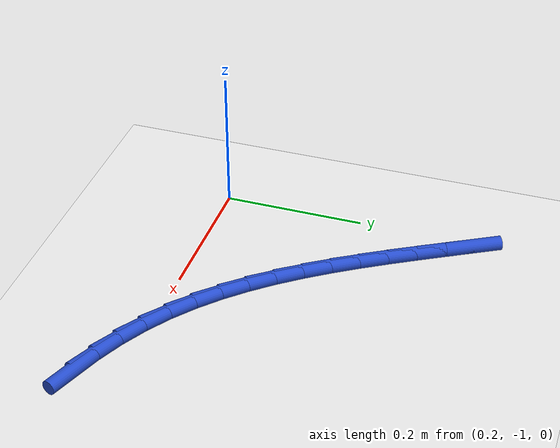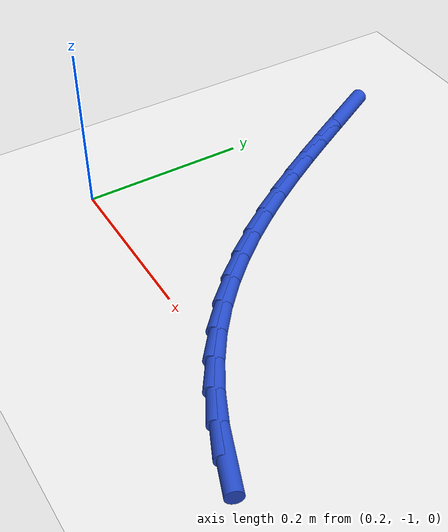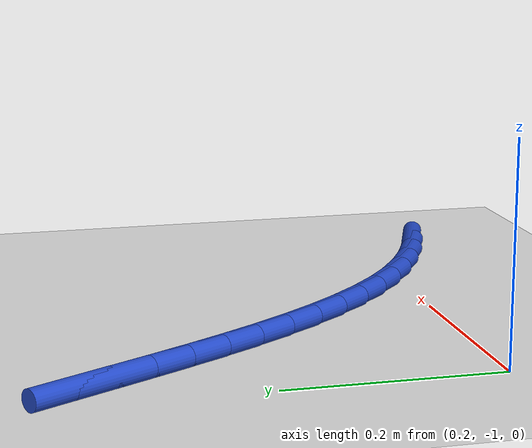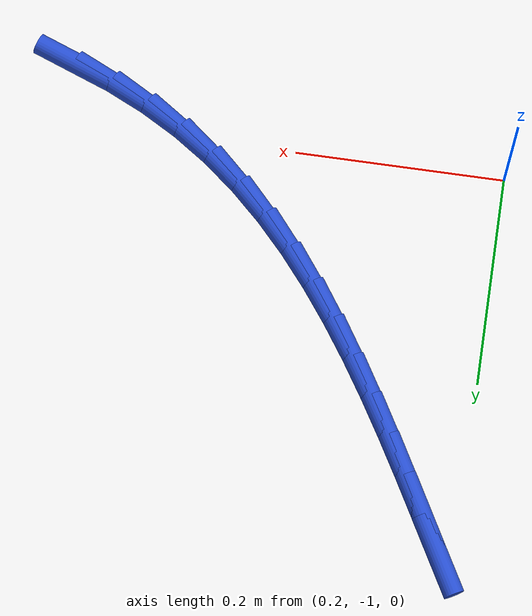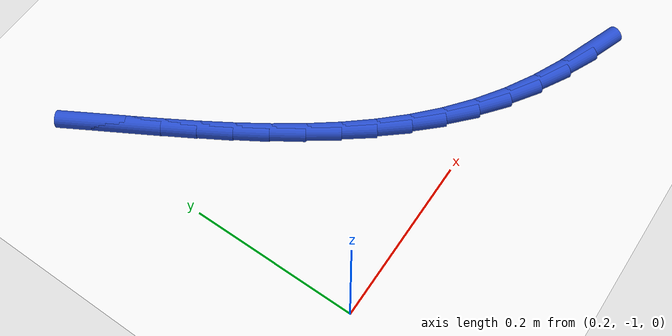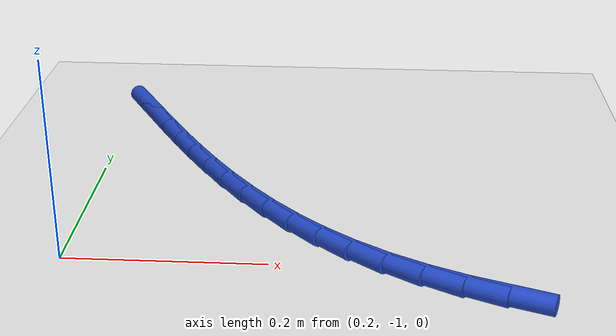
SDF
<sdf version="1.6">
 <world name="default">
  <model name="ground_plane">
   <static>1</static>
   <link name="link">
    <collision name="collision">
     <geometry><plane><normal>0 0 1</normal><size>100 100</size></plane></geometry>
     <surface><friction><ode><mu>100</mu><mu2>50</mu2></ode></friction></surface>
    </collision>
    <visual name="visual">
     <cast_shadows>0</cast_shadows>
     <geometry><plane><normal>0 0 1</normal><size>100 100</size></plane></geometry>
     <material>
      <script><uri>file://media/materials/scripts/gazebo.material</uri><name>Gazebo/WhiteGlow</name></script>
     </material>
    </visual>
   </link>
  </model>
  <model name="line">
   <link name="link_168">
    <pose>0.6213220668268685 -1.0568354128244748 0.01 0 1.57 -0.3570721496503769</pose>
    <collision name="collision">
     <geometry><cylinder><radius>0.01</radius><length>0.08</length></cylinder></geometry>
    </collision>
    <visual name="visual">
     <material>
      <script><name>Gazebo/Blue</name><uri>file://media/materials/scripts/gazebo.material</uri></script>
     </material>
     <geometry><cylinder><radius>0.01</radius><length>0.08</length></cylinder></geometry>
    </visual>
   </link>
   <link name="link_169">
    <pose>0.5834506955283824 -1.0427069730055074 0.01 0 1.57 -0.432099685310936</pose>
    <collision name="collision">
     <geometry><cylinder><radius>0.01</radius><length>0.08</length></cylinder></geometry>
    </collision>
    <visual name="visual">
     <material>
      <script><name>Gazebo/Blue</name><uri>file://media/materials/scripts/gazebo.material</uri></script>
     </material>
     <geometry><cylinder><radius>0.01</radius><length>0.08</length></cylinder></geometry>
    </visual>
   </link>
   <link name="link_170">
    <pose>0.5469235819452908 -1.0258619541322207 0.01 0 1.57 -0.5101046972954633</pose>
    <collision name="collision">
     <geometry><cylinder><radius>0.01</radius><length>0.08</length></cylinder></geometry>
    </collision>
    <visual name="visual">
     <material>
      <script><name>Gazebo/Blue</name><uri>file://media/materials/scripts/gazebo.material</uri></script>
     </material>
     <geometry><cylinder><radius>0.01</radius><length>0.08</length></cylinder></geometry>
    </visual>
   </link>
   <link name="link_171">
    <pose>0.5120841922778538 -1.0063694487377852 0.01 0 1.57 -0.5920372308311811</pose>
    <collision name="collision">
     <geometry><cylinder><radius>0.01</radius><length>0.08</length></cylinder></geometry>
    </collision>
    <visual name="visual">
     <material>
      <script><name>Gazebo/Blue</name><uri>file://media/materials/scripts/gazebo.material</uri></script>
     </material>
     <geometry><cylinder><radius>0.01</radius><length>0.08</length></cylinder></geometry>
    </visual>
   </link>
   <link name="link_172">
    <pose>0.47926885772828137 -0.9843008011751032 0.01 0 1.57 -0.6737190140402777</pose>
    <collision name="collision">
     <geometry><cylinder><radius>0.01</radius><length>0.08</length></cylinder></geometry>
    </collision>
    <visual name="visual">
     <material>
      <script><name>Gazebo/Blue</name><uri>file://media/materials/scripts/gazebo.material</uri></script>
     </material>
     <geometry><cylinder><radius>0.01</radius><length>0.08</length></cylinder></geometry>
    </visual>
   </link>
   <link name="link_173">
    <pose>0.44858006440579623 -0.9598011577786656 0.01 0 1.57 -0.7485512022571151</pose>
    <collision name="collision">
     <geometry><cylinder><radius>0.01</radius><length>0.08</length></cylinder></geometry>
    </collision>
    <visual name="visual">
     <material>
      <script><name>Gazebo/Blue</name><uri>file://media/materials/scripts/gazebo.material</uri></script>
     </material>
     <geometry><cylinder><radius>0.01</radius><length>0.08</length></cylinder></geometry>
    </visual>
   </link>
   <link name="link_174">
    <pose>0.41983955116226007 -0.9331042692819466 0.01 0 1.57 -0.8153669744676412</pose>
    <collision name="collision">
     <geometry><cylinder><radius>0.01</radius><length>0.08</length></cylinder></geometry>
    </collision>
    <visual name="visual">
     <material>
      <script><name>Gazebo/Blue</name><uri>file://media/materials/scripts/gazebo.material</uri></script>
     </material>
     <geometry><cylinder><radius>0.01</radius><length>0.08</length></cylinder></geometry>
    </visual>
   </link>
   <link name="link_175">
    <pose>0.39285244305248396 -0.9044491297661768 0.01 0 1.57 -0.8737971962664733</pose>
    <collision name="collision">
     <geometry><cylinder><radius>0.01</radius><length>0.08</length></cylinder></geometry>
    </collision>
    <visual name="visual">
     <material>
      <script><name>Gazebo/Blue</name><uri>file://media/materials/scripts/gazebo.material</uri></script>
     </material>
     <geometry><cylinder><radius>0.01</radius><length>0.08</length></cylinder></geometry>
    </visual>
   </link>
   <link name="link_176">
    <pose>0.36742386513127934 -0.874074733312588 0.01 0 1.57 -0.9238099312153559</pose>
    <collision name="collision">
     <geometry><cylinder><radius>0.01</radius><length>0.08</length></cylinder></geometry>
    </collision>
    <visual name="visual">
     <material>
      <script><name>Gazebo/Blue</name><uri>file://media/materials/scripts/gazebo.material</uri></script>
     </material>
     <geometry><cylinder><radius>0.01</radius><length>0.08</length></cylinder></geometry>
    </visual>
   </link>
   <link name="link_177">
    <pose>0.34335894245345755 -0.8422200740024113 0.01 0 1.57 -0.9655871931034862</pose>
    <collision name="collision">
     <geometry><cylinder><radius>0.01</radius><length>0.08</length></cylinder></geometry>
    </collision>
    <visual name="visual">
     <material>
      <script><name>Gazebo/Blue</name><uri>file://media/materials/scripts/gazebo.material</uri></script>
     </material>
     <geometry><cylinder><radius>0.01</radius><length>0.08</length></cylinder></geometry>
    </visual>
   </link>
   <link name="link_178">
    <pose>0.32046280007382993 -0.8091241459168781 0.01 0 1.57 -0.9994180964415349</pose>
    <collision name="collision">
     <geometry><cylinder><radius>0.01</radius><length>0.08</length></cylinder></geometry>
    </collision>
    <visual name="visual">
     <material>
      <script><name>Gazebo/Blue</name><uri>file://media/materials/scripts/gazebo.material</uri></script>
     </material>
     <geometry><cylinder><radius>0.01</radius><length>0.08</length></cylinder></geometry>
    </visual>
   </link>
   <link name="link_179">
    <pose>0.29854056304720794 -0.7750259431372197 0.01 0 1.57 -1.0256170533480624</pose>
    <collision name="collision">
     <geometry><cylinder><radius>0.01</radius><length>0.08</length></cylinder></geometry>
    </collision>
    <visual name="visual">
     <material>
      <script><name>Gazebo/Blue</name><uri>file://media/materials/scripts/gazebo.material</uri></script>
     </material>
     <geometry><cylinder><radius>0.01</radius><length>0.08</length></cylinder></geometry>
    </visual>
   </link>
   <link name="link_180">
    <pose>0.2773973564284027 -0.7401644597446674 0.01 0 1.57 -1.0444662939924592</pose>
    <collision name="collision">
     <geometry><cylinder><radius>0.01</radius><length>0.08</length></cylinder></geometry>
    </collision>
    <visual name="visual">
     <material>
      <script><name>Gazebo/Blue</name><uri>file://media/materials/scripts/gazebo.material</uri></script>
     </material>
     <geometry><cylinder><radius>0.01</radius><length>0.08</length></cylinder></geometry>
    </visual>
   </link>
   <link name="link_181">
    <pose>0.25683830527222584 -0.7047786898204529 0.01 0 1.57 -1.0561779096420865</pose>
    <collision name="collision">
     <geometry><cylinder><radius>0.01</radius><length>0.08</length></cylinder></geometry>
    </collision>
    <visual name="visual">
     <material>
      <script><name>Gazebo/Blue</name><uri>file://media/materials/scripts/gazebo.material</uri></script>
     </material>
     <geometry><cylinder><radius>0.01</radius><length>0.08</length></cylinder></geometry>
    </visual>
   </link>
   <link name="link_182">
    <pose>0.23666853463348836 -0.669107627445807 0.01 0 1.57 -1.0608699439800018</pose>
    <collision name="collision">
     <geometry><cylinder><radius>0.01</radius><length>0.08</length></cylinder></geometry>
    </collision>
    <visual name="visual">
     <material>
      <script><name>Gazebo/Blue</name><uri>file://media/materials/scripts/gazebo.material</uri></script>
     </material>
     <geometry><cylinder><radius>0.01</radius><length>0.08</length></cylinder></geometry>
    </visual>
   </link>
   <link name="link_183">
    <pose>0.21669316956700188 -0.6333902667019612 0.01 0 1.57 -1.0585520650573983</pose>
    <collision name="collision">
     <geometry><cylinder><radius>0.01</radius><length>0.08</length></cylinder></geometry>
    </collision>
    <visual name="visual">
     <material>
      <script><name>Gazebo/Blue</name><uri>file://media/materials/scripts/gazebo.material</uri></script>
     </material>
     <geometry><cylinder><radius>0.01</radius><length>0.08</length></cylinder></geometry>
    </visual>
   </link>
  </model>
 </world>
</sdf>
